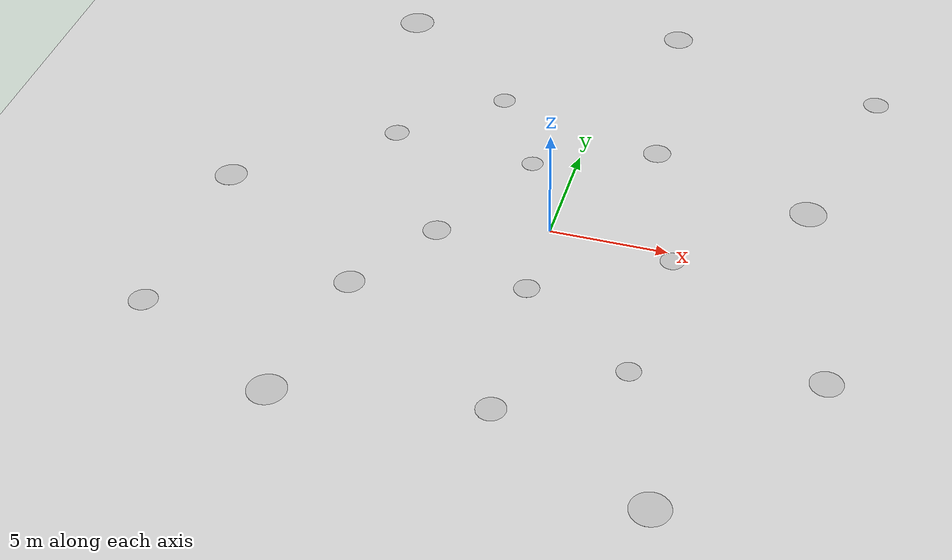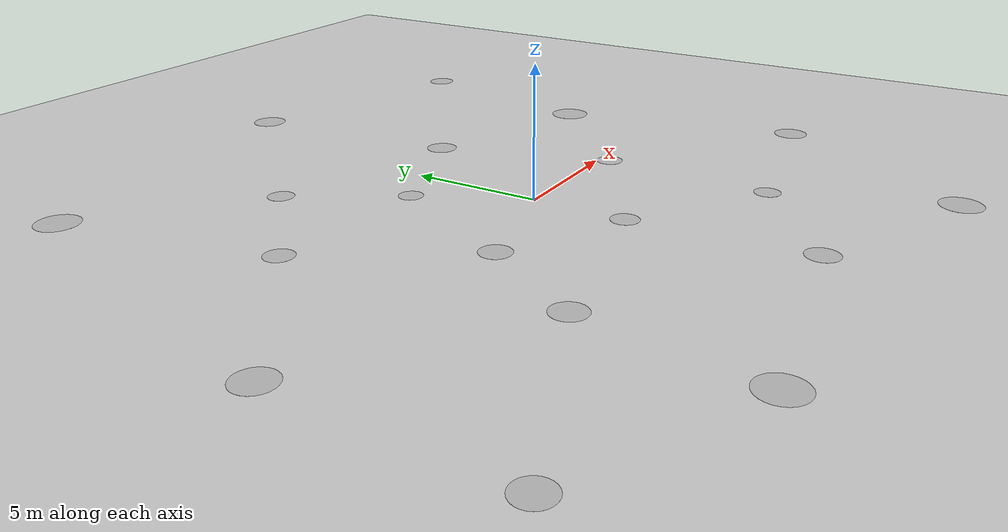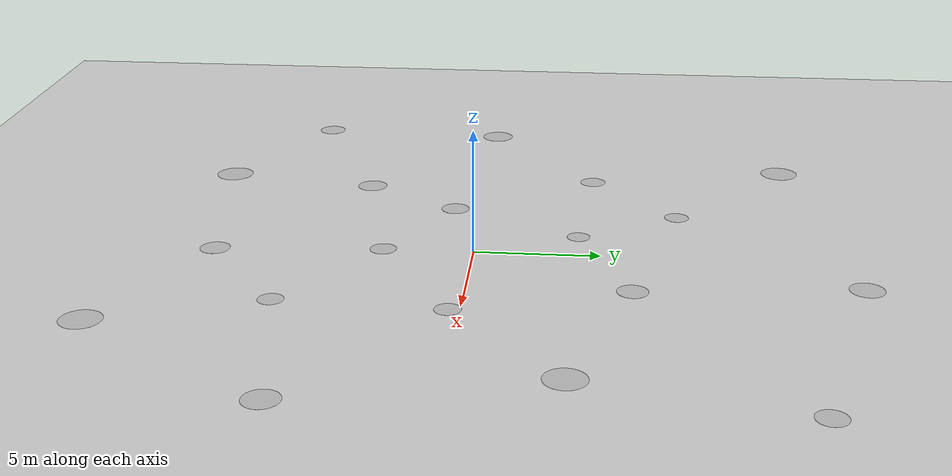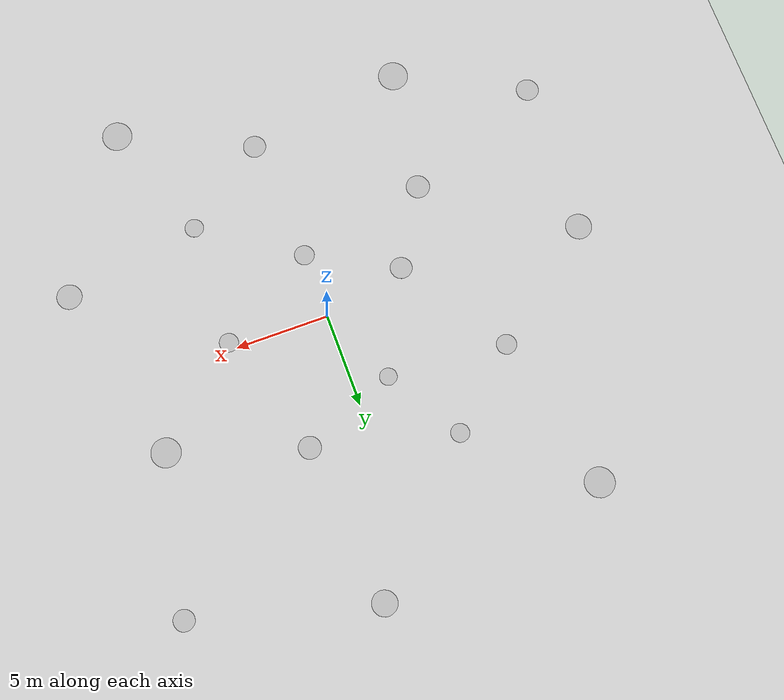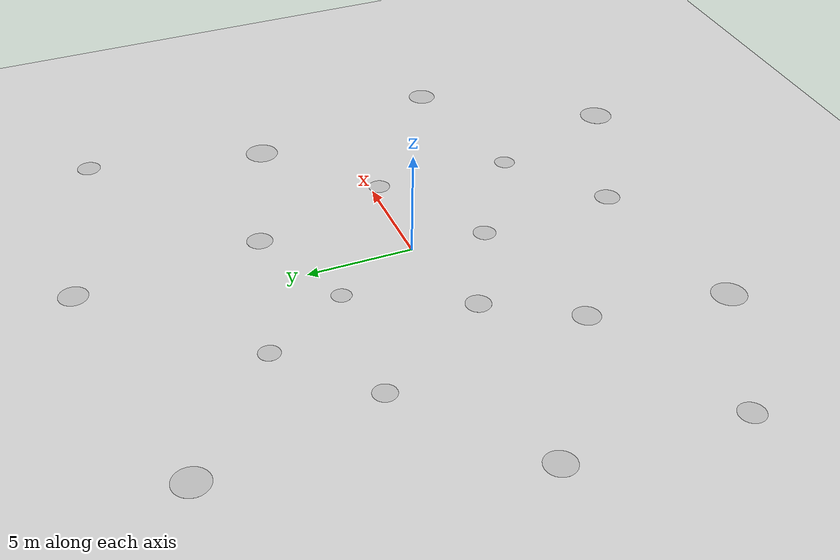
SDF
<sdf version="1.7">
 <world name="default">
  <light name="sun" type="directional">
   <pose>0 0 10 0 -0 0</pose>
   <diffuse>0.8 0.8 0.8 1</diffuse>
   <specular>0.2 0.2 0.2 1</specular>
   <attenuation>
    <range>1000</range>
    <constant>0.9</constant>
    <linear>0.01</linear>
    <quadratic>0.001</quadratic>
   </attenuation>
   <direction>-0.5 0.1 -0.9</direction>
   <spot><inner_angle>0</inner_angle><outer_angle>0</outer_angle><falloff>0</falloff></spot>
  </light>
  <gravity>0 0 -9.8</gravity>
  <magnetic_field>6e-06 2.3e-05 -4.2e-05</magnetic_field>
  <atmosphere type="adiabatic"/>
  <physics type="ode">
   <max_step_size>0.001</max_step_size>
   <real_time_factor>1</real_time_factor>
   <real_time_update_rate>1000</real_time_update_rate>
  </physics>
  <scene><ambient>0.4 0.4 0.4 1</ambient><background>0.7 0.7 0.7 1</background><shadows>1</shadows></scene>
  <spherical_coordinates>
   <surface_model>EARTH_WGS84</surface_model>
   <latitude_deg>0</latitude_deg>
   <longitude_deg>0</longitude_deg>
   <elevation>0</elevation>
   <heading_deg>0</heading_deg>
  </spherical_coordinates>
  <model name="pot_hole">
   <static>1</static>
   <link name="base_link">
    <visual name="pothole">
     <geometry><cylinder><radius>0.587247</radius><length>0.0005</length></cylinder></geometry>
    </visual>
   </link>
   <pose>-4.58589 -1.18761 0 0 -0 0</pose>
  </model>
  <model name="pot_hole_clone">
   <static>1</static>
   <link name="base_link">
    <visual name="pothole">
     <geometry><cylinder><radius>0.633471</radius><length>0.0005</length></cylinder></geometry>
    </visual>
   </link>
   <pose>-7.0214 -5.12721 0 0 -0 0</pose>
  </model>
  <model name="pot_hole_clone_0">
   <static>1</static>
   <link name="base_link">
    <visual name="pothole">
     <geometry><cylinder><radius>0.535008</radius><length>0.0005</length></cylinder></geometry>
    </visual>
   </link>
   <pose>-0.008321 -3.59165 0 0 -0 0</pose>
  </model>
  <model name="pot_hole_clone_1">
   <static>1</static>
   <link name="base_link">
    <visual name="pothole">
     <geometry><cylinder><radius>0.5</radius><length>0.0005</length></cylinder></geometry>
    </visual>
   </link>
   <pose>-4.3413 8.11941 0 0 -0 0</pose>
  </model>
  <model name="pot_hole_clone_2">
   <static>1</static>
   <link name="base_link">
    <visual name="pothole">
     <geometry><cylinder><radius>0.467584</radius><length>0.0005</length></cylinder></geometry>
    </visual>
   </link>
   <pose>-1.89712 4.09019 0 0 -0 0</pose>
  </model>
  <model name="pot_hole_clone_3">
   <static>1</static>
   <link name="base_link">
    <visual name="pothole">
     <geometry><cylinder><radius>0.605712</radius><length>0.0005</length></cylinder></geometry>
    </visual>
   </link>
   <pose>3.19486 6.21648 0 0 -0 0</pose>
  </model>
  <model name="pot_hole_clone_4">
   <static>1</static>
   <link name="base_link">
    <visual name="pothole">
     <geometry><cylinder><radius>0.510707</radius><length>0.0005</length></cylinder></geometry>
    </visual>
   </link>
   <pose>5.30188 -0.445785 0 0 -0 0</pose>
  </model>
  <model name="pot_hole_clone_5">
   <static>1</static>
   <link name="base_link">
    <visual name="pothole">
     <geometry><cylinder><radius>0.5</radius><length>0.0005</length></cylinder></geometry>
    </visual>
   </link>
   <pose>5 -7 0 0 -0 0</pose>
  </model>
  <model name="pot_hole_clone_6">
   <static>1</static>
   <link name="base_link">
    <visual name="pothole">
     <geometry><cylinder><radius>0.606205</radius><length>0.0005</length></cylinder></geometry>
    </visual>
   </link>
   <pose>0.464744 -10.2636 0 0 -0 0</pose>
  </model>
  <model name="pot_hole_clone_7">
   <static>1</static>
   <link name="base_link">
    <visual name="pothole">
     <geometry><cylinder><radius>0.539678</radius><length>0.0005</length></cylinder></geometry>
    </visual>
   </link>
   <pose>-8.30272 4.5747 0 0 -0 0</pose>
  </model>
  <model name="my_ground_plane">
   <static>1</static>
   <link name="link">
    <collision name="collision">
     <geometry><plane><normal>0 0 1</normal><size>100 100</size></plane></geometry>
     <surface><friction><ode><mu>100</mu><mu2>50</mu2></ode></friction></surface>
    </collision>
    <visual name="visual">
     <cast_shadows>0</cast_shadows>
     <geometry><plane><normal>0 0 1</normal><size>100 100</size></plane></geometry>
     <material>
      <script>
       <uri>model://ground_plane/materials/scripts</uri>
       <uri>model://ground_plane/materials/textures/</uri>
       <name>GroundPlane/Image</name>
      </script>
     </material>
    </visual>
   </link>
  </model>
  <model name="pot_hole_clone_clone">
   <static>1</static>
   <link name="base_link">
    <visual name="pothole">
     <geometry><cylinder><radius>0.80184</radius><length>0.0005</length></cylinder></geometry>
    </visual>
   </link>
   <pose>-8 -11.5629 0 0 -0 0</pose>
  </model>
  <model name="pot_hole_clone_clone_0">
   <static>1</static>
   <link name="base_link">
    <visual name="pothole">
     <geometry><cylinder><radius>0.80184</radius><length>0.0005</length></cylinder></geometry>
    </visual>
   </link>
   <pose>7.26078 -13.349 0 0 -0 0</pose>
  </model>
  <model name="pot_hole_clone_clone_1">
   <static>1</static>
   <link name="base_link">
    <visual name="pothole">
     <geometry><cylinder><radius>0.700325</radius><length>0.0005</length></cylinder></geometry>
    </visual>
   </link>
   <pose>-14.2823 -0.117825 0 0 -0 0</pose>
  </model>
  <model name="pot_hole_clone_clone_2">
   <static>1</static>
   <link name="base_link">
    <visual name="pothole">
     <geometry><cylinder><radius>0.604755</radius><length>0.0005</length></cylinder></geometry>
    </visual>
   </link>
   <pose>-14.6059 -8.30835 0 0 -0 0</pose>
  </model>
  <model name="pot_hole_clone_clone_3">
   <static>1</static>
   <link name="base_link">
    <visual name="pothole">
     <geometry><cylinder><radius>0.80184</radius><length>0.0005</length></cylinder></geometry>
    </visual>
   </link>
   <pose>-10.1154 12.9295 0 0 -0 0</pose>
  </model>
  <model name="pot_hole_clone_clone_4">
   <static>1</static>
   <link name="base_link">
    <visual name="pothole">
     <geometry><cylinder><radius>0.675177</radius><length>0.0005</length></cylinder></geometry>
    </visual>
   </link>
   <pose>2.32109 14.901 0 0 -0 0</pose>
  </model>
  <model name="pot_hole_clone_clone_5">
   <static>1</static>
   <link name="base_link">
    <visual name="pothole">
     <geometry><cylinder><radius>0.565326</radius><length>0.0005</length></cylinder></geometry>
    </visual>
   </link>
   <pose>12.0349 12.2819 0 0 -0 0</pose>
  </model>
  <model name="pot_hole_clone_clone_6">
   <static>1</static>
   <link name="base_link">
    <visual name="pothole">
     <geometry><cylinder><radius>0.788894</radius><length>0.0005</length></cylinder></geometry>
    </visual>
   </link>
   <pose>10.2171 3.95196 0 0 -0 0</pose>
  </model>
  <model name="pot_hole_clone_clone_7">
   <static>1</static>
   <link name="base_link">
    <visual name="pothole">
     <geometry><cylinder><radius>0.675192</radius><length>0.0005</length></cylinder></geometry>
    </visual>
   </link>
   <pose>12.3944 -5.63551 0 0 -0 0</pose>
  </model>
 </world>
</sdf>
